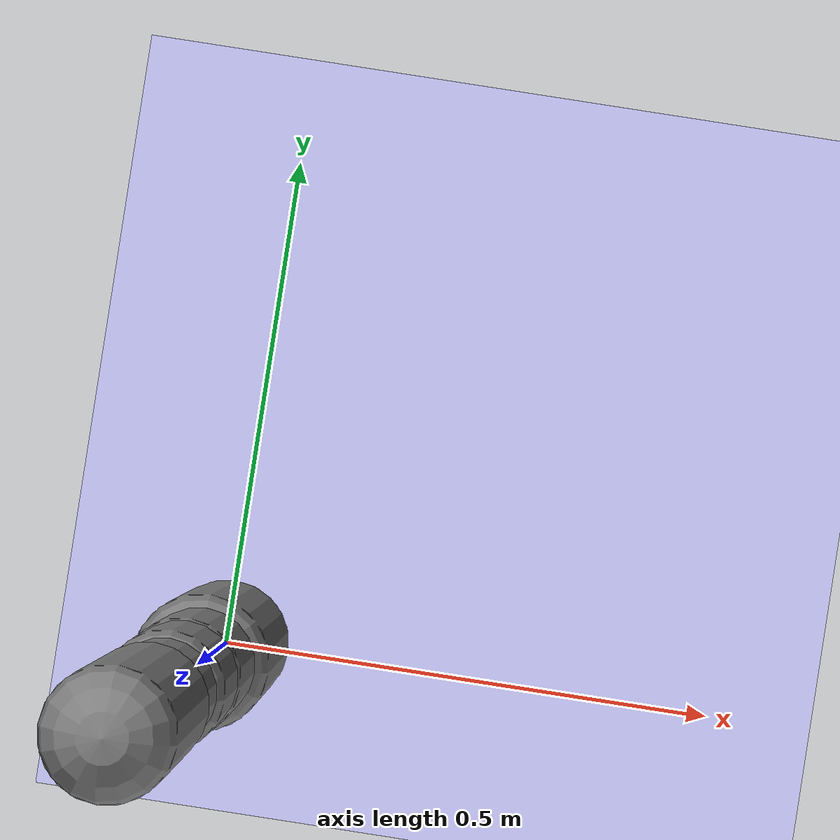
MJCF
<?xml version='1.0' encoding='UTF-8'?>
<mujoco model="robot_model">
  <worldbody>
    <light name="light" pos="0 -3 10" dir="0 0.5 -1" diffuse=".8 .8 .8" specular="0.1 0.1 0.1"/>
    <geom name="floor" type="plane" size="10.0 10.0 0.1" pos="0 0 0" rgba="0.8 0.8 1 1" contype="2" conaffinity="1"/>
    <body name="limb0" pos="0 0 0">
      <geom type="capsule" fromto="0 0 0 0 0 0.45280434959265614" size="0.06443883078096133" density="542.5934628213636" contype="1" conaffinity="2"/>
      <site type="sphere" size="0.01" name="limb0_site0" pos="0 0 0.37462004594928705"/>
      <freejoint name="limb0_root"/>
      <body name="limb1" pos="0 0 0.37462004594928705">
        <geom type="capsule" fromto="0 0 0 0 0 0.372274530228085" size="0.052960072305996767" density="1069.5549891432568" contype="1" conaffinity="2"/>
        <site type="sphere" size="0.01" name="limb1_site0" pos="0 0 0.3557022303991876"/>
        <site type="sphere" size="0.01" name="limb1_site1" pos="0 0 0.13266544409228273"/>
        <site type="sphere" size="0.01" name="limb1_site2" pos="0 0 0.07414278387858302"/>
        <body name="limb2" pos="0 0 0.3557022303991876">
          <geom type="capsule" fromto="0 0 0 0 0 0.5" size="0.045329815490319995" density="1017.2531489540214" contype="1" conaffinity="2"/>
          <site type="sphere" size="0.01" name="limb2_site0" pos="0 0 0.28431863432086774"/>
          <site type="sphere" size="0.01" name="limb2_site1" pos="0 0 0.4365154153176309"/>
          <body name="limb3" pos="0 0 0.28431863432086774">
            <geom type="capsule" fromto="0 0 0 0 0 0.19166066799868264" size="0.0314707546179414" density="956.2416848734547" contype="1" conaffinity="2"/>
            <joint name="joint_limb2_limb3_0" type="hinge" axis="0 1 0" range="-51.59203017742993 51.59203017742993" damping="5.0"/>
          </body>
          <body name="limb4" pos="0 0 0.4365154153176309">
            <geom type="capsule" fromto="0 0 0 0 0 0.378171156067034" size="0.04960379875638113" density="1020.0145094172238" contype="1" conaffinity="2"/>
            <joint name="joint_limb2_limb4_0" type="hinge" axis="1 0 0" range="-38.680136556965635 38.680136556965635" damping="5.0"/>
          </body>
          <joint name="joint_limb1_limb2_0" type="hinge" axis="0 1 0" range="-60.504894728636025 60.504894728636025" damping="5.0"/>
        </body>
        <body name="limb5" pos="0 0 0.13266544409228273">
          <geom type="capsule" fromto="0 0 0 0 0 0.4553959547646001" size="0.05112992904407712" density="905.1932138092933" contype="1" conaffinity="2"/>
          <joint name="joint_limb1_limb5_0" type="hinge" axis="0 0 1" range="-65.9823599983076 65.9823599983076" damping="5.0"/>
        </body>
        <body name="limb6" pos="0 0 0.07414278387858302">
          <geom type="capsule" fromto="0 0 0 0 0 0.44725352205808966" size="0.03564490912095247" density="1041.1841761778296" contype="1" conaffinity="2"/>
          <joint name="joint_limb1_limb6_0" type="hinge" axis="0 0 1" range="-20.0 20.0" damping="5.0"/>
        </body>
        <joint name="joint_limb0_limb1_0" type="hinge" axis="0 1 0" range="-97.72934962860585 97.72934962860585" damping="5.0"/>
      </body>
    </body>
  </worldbody>
  <actuator>
    <position name="position_actuator_joint_limb0_limb1_0" joint="joint_limb0_limb1_0" gear="2.0" inheritrange="1" forcerange="-20.869594355142794 20.869594355142794" forcelimited="true" kp="100.0"/>
    <position name="position_actuator_joint_limb1_limb2_0" joint="joint_limb1_limb2_0" gear="1.855224638398584" inheritrange="1" forcerange="-18.401183504925072 18.401183504925072" forcelimited="true" kp="100.0"/>
    <position name="position_actuator_joint_limb2_limb3_0" joint="joint_limb2_limb3_0" gear="1.8009346564222402" inheritrange="1" forcerange="-3.4754816031092273 3.4754816031092273" forcelimited="true" kp="100.0"/>
    <position name="position_actuator_joint_limb2_limb4_0" joint="joint_limb2_limb4_0" gear="1.5727331217504008" inheritrange="1" forcerange="-17.516274913506823 17.516274913506823" forcelimited="true" kp="100.0"/>
    <position name="position_actuator_joint_limb1_limb5_0" joint="joint_limb1_limb5_0" gear="0.9865253178883315" inheritrange="1" forcerange="-19.46191769120985 19.46191769120985" forcelimited="true" kp="100.0"/>
    <position name="position_actuator_joint_limb1_limb6_0" joint="joint_limb1_limb6_0" gear="1.7866470493797637" inheritrange="1" forcerange="-10.281456805028963 10.281456805028963" forcelimited="true" kp="100.0"/>
  </actuator>
</mujoco>
